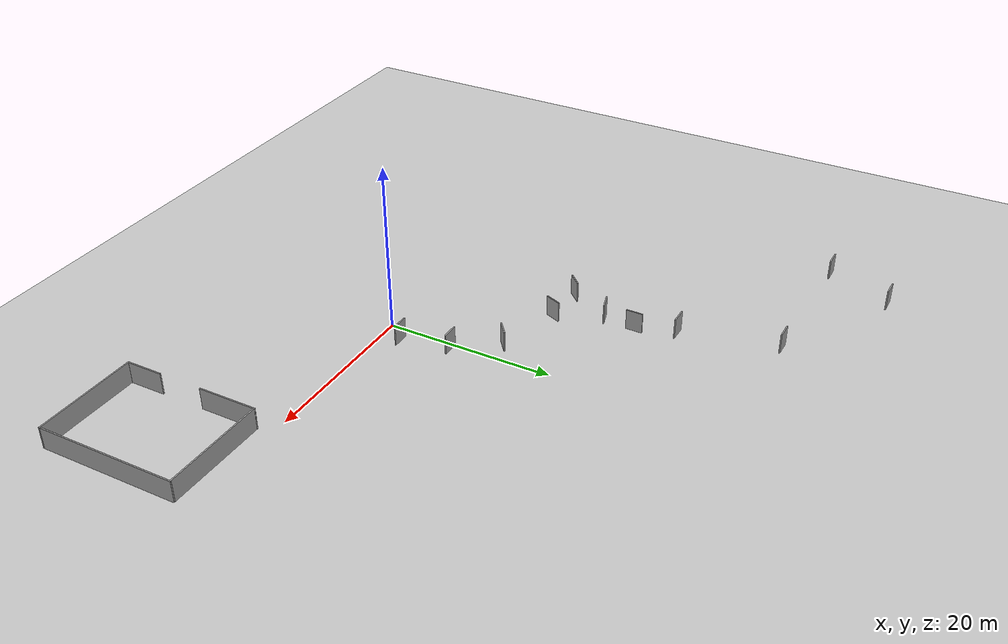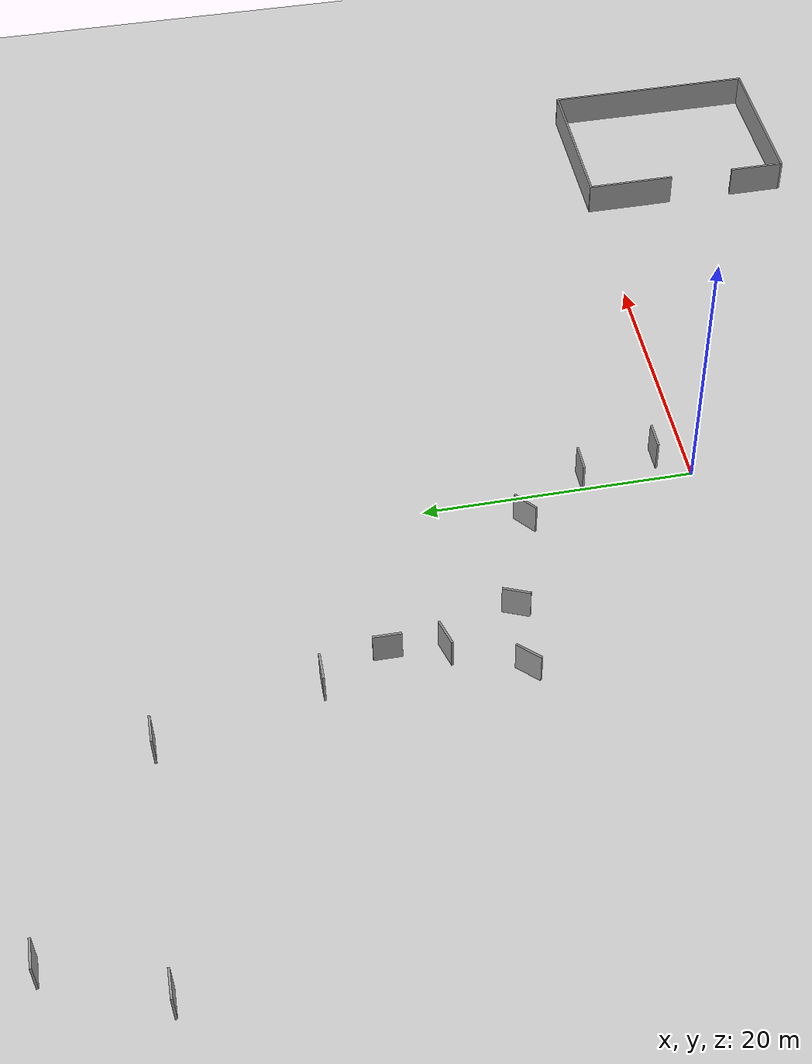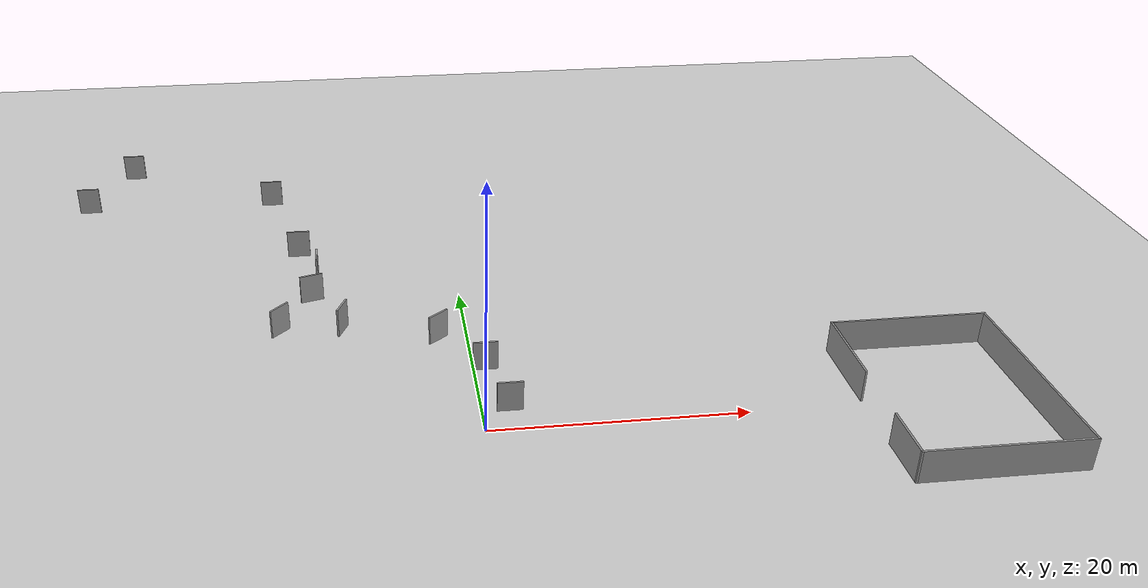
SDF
<sdf version="1.6">
 <world name="default">
  <model name="ground_plane">
   <static>1</static>
   <link name="link">
    <collision name="collision">
     <geometry><plane><normal>0 0 1</normal><size>100 100</size></plane></geometry>
     <surface><friction><ode><mu>100</mu><mu2>50</mu2></ode></friction></surface>
    </collision>
    <visual name="visual">
     <cast_shadows>0</cast_shadows>
     <geometry><plane><normal>0 0 1</normal><size>100 100</size></plane></geometry>
     <material>
      <script><uri>file://media/materials/scripts/gazebo.material</uri><name>Gazebo/Grey</name></script>
     </material>
    </visual>
   </link>
  </model>
  <model name="PaperTestTunnelHouse_1">
   <pose>31.9195 -6.319 4 0 -0 0</pose>
   <link name="Wall_10">
    <collision name="Wall_10_Collision">
     <geometry><box><size>4.25 0.15 2.5</size></box></geometry>
     <pose>0 0 1.25 0 -0 0</pose>
    </collision>
    <visual name="Wall_10_Visual">
     <pose>0 0 1.25 0 -0 0</pose>
     <geometry><box><size>4.25 0.15 2.5</size></box></geometry>
     <material>
      <script><uri>file://media/materials/scripts/gazebo.material</uri><name>Gazebo/Grey</name></script>
      <ambient>1 1 1 1</ambient>
     </material>
     <meta><layer>0</layer></meta>
    </visual>
    <pose>-5.925 -5.875 0 0 -0 1.5708</pose>
   </link>
   <link name="Wall_6">
    <collision name="Wall_6_Collision">
     <geometry><box><size>6.75 0.15 2.5</size></box></geometry>
     <pose>0 0 1.25 0 -0 0</pose>
    </collision>
    <visual name="Wall_6_Visual">
     <pose>0 0 1.25 0 -0 0</pose>
     <geometry><box><size>6.75 0.15 2.5</size></box></geometry>
     <material>
      <script><uri>file://media/materials/scripts/gazebo.material</uri><name>Gazebo/Grey</name></script>
      <ambient>1 1 1 1</ambient>
     </material>
     <meta><layer>0</layer></meta>
    </visual>
    <pose>-5.925 4.625 0 0 -0 1.5708</pose>
   </link>
   <link name="Wall_7">
    <collision name="Wall_7_Collision">
     <geometry><box><size>12 0.15 2.5</size></box></geometry>
     <pose>0 0 1.25 0 -0 0</pose>
    </collision>
    <visual name="Wall_7_Visual">
     <pose>0 0 1.25 0 -0 0</pose>
     <geometry><box><size>12 0.15 2.5</size></box></geometry>
     <material>
      <script><uri>file://media/materials/scripts/gazebo.material</uri><name>Gazebo/Grey</name></script>
      <ambient>1 1 1 1</ambient>
     </material>
     <meta><layer>0</layer></meta>
    </visual>
    <pose>-0 7.925 0 0 -0 0</pose>
   </link>
   <link name="Wall_8">
    <collision name="Wall_8_Collision">
     <geometry><box><size>16 0.15 2.5</size></box></geometry>
     <pose>0 0 1.25 0 -0 0</pose>
    </collision>
    <visual name="Wall_8_Visual">
     <pose>0 0 1.25 0 -0 0</pose>
     <geometry><box><size>16 0.15 2.5</size></box></geometry>
     <material>
      <script><uri>file://media/materials/scripts/gazebo.material</uri><name>Gazebo/Grey</name></script>
      <ambient>1 1 1 1</ambient>
     </material>
     <meta><layer>0</layer></meta>
    </visual>
    <pose>5.925 0 0 0 -0 -1.5708</pose>
   </link>
   <link name="Wall_9">
    <collision name="Wall_9_Collision">
     <geometry><box><size>12 0.15 2.5</size></box></geometry>
     <pose>0 0 1.25 0 -0 0</pose>
    </collision>
    <visual name="Wall_9_Visual">
     <pose>0 0 1.25 0 -0 0</pose>
     <geometry><box><size>12 0.15 2.5</size></box></geometry>
     <material>
      <script><uri>file://media/materials/scripts/gazebo.material</uri><name>Gazebo/Grey</name></script>
      <ambient>1 1 1 1</ambient>
     </material>
     <meta><layer>0</layer></meta>
    </visual>
    <pose>-0 -7.925 0 0 -0 3.14159</pose>
   </link>
   <static>1</static>
  </model>
  <model name="2mWall_3">
   <pose>2.10228 2.41901 0 0 -0 0</pose>
   <link name="Wall_0">
    <collision name="Wall_0_Collision">
     <geometry><box><size>2 0.15 2.5</size></box></geometry>
     <pose>0 0 1.25 0 -0 0</pose>
    </collision>
    <visual name="Wall_0_Visual">
     <pose>0 0 1.25 0 -0 0</pose>
     <geometry><box><size>2 0.15 2.5</size></box></geometry>
     <material>
      <script><uri>file://media/materials/scripts/gazebo.material</uri><name>Gazebo/Grey</name></script>
      <ambient>1 1 1 1</ambient>
     </material>
     <meta><layer>0</layer></meta>
    </visual>
   </link>
   <static>1</static>
  </model>
  <model name="2mWall_4">
   <pose>-10.1702 15.3219 0 0 -0 1.16983</pose>
   <link name="Wall_0">
    <collision name="Wall_0_Collision">
     <geometry><box><size>2 0.15 2.5</size></box></geometry>
     <pose>0 0 1.25 0 -0 0</pose>
    </collision>
    <visual name="Wall_0_Visual">
     <pose>0 0 1.25 0 -0 0</pose>
     <geometry><box><size>2 0.15 2.5</size></box></geometry>
     <material>
      <script><uri>file://media/materials/scripts/gazebo.material</uri><name>Gazebo/Grey</name></script>
      <ambient>1 1 1 1</ambient>
     </material>
     <meta><layer>0</layer></meta>
    </visual>
   </link>
   <static>1</static>
  </model>
  <model name="2mWall_20">
   <pose>-34.4571 40.7091 0 0 -0 0</pose>
   <link name="Wall_0">
    <collision name="Wall_0_Collision">
     <geometry><box><size>2 0.15 2.5</size></box></geometry>
     <pose>0 0 1.25 0 -0 0</pose>
    </collision>
    <visual name="Wall_0_Visual">
     <pose>0 0 1.25 0 -0 0</pose>
     <geometry><box><size>2 0.15 2.5</size></box></geometry>
     <material>
      <script><uri>file://media/materials/scripts/gazebo.material</uri><name>Gazebo/Grey</name></script>
      <ambient>1 1 1 1</ambient>
     </material>
     <meta><layer>0</layer></meta>
    </visual>
   </link>
   <static>1</static>
  </model>
  <model name="2mWall_21">
   <pose>-31.0254 48.4946 0 0 -0 0</pose>
   <link name="Wall_0">
    <collision name="Wall_0_Collision">
     <geometry><box><size>2 0.15 2.5</size></box></geometry>
     <pose>0 0 1.25 0 -0 0</pose>
    </collision>
    <visual name="Wall_0_Visual">
     <pose>0 0 1.25 0 -0 0</pose>
     <geometry><box><size>2 0.15 2.5</size></box></geometry>
     <material>
      <script><uri>file://media/materials/scripts/gazebo.material</uri><name>Gazebo/Grey</name></script>
      <ambient>1 1 1 1</ambient>
     </material>
     <meta><layer>0</layer></meta>
    </visual>
   </link>
   <static>1</static>
  </model>
  <model name="2mWall_3_clone">
   <pose>0.934458 8.21854 0 0 -0 0.005789</pose>
   <link name="Wall_0">
    <collision name="Wall_0_Collision">
     <geometry><box><size>2 0.15 2.5</size></box></geometry>
     <pose>0 0 1.25 0 -0 0</pose>
    </collision>
    <visual name="Wall_0_Visual">
     <pose>0 0 1.25 0 -0 0</pose>
     <geometry><box><size>2 0.15 2.5</size></box></geometry>
     <material>
      <script><uri>file://media/materials/scripts/gazebo.material</uri><name>Gazebo/Grey</name></script>
      <ambient>1 1 1 1</ambient>
     </material>
     <meta><layer>0</layer></meta>
    </visual>
   </link>
   <static>1</static>
  </model>
  <model name="2mWall_22">
   <pose>-16.7034 40.4844 0 0 -0 0</pose>
   <link name="Wall_0">
    <collision name="Wall_0_Collision">
     <geometry><box><size>2 0.15 2.5</size></box></geometry>
     <pose>0 0 1.25 0 -0 0</pose>
    </collision>
    <visual name="Wall_0_Visual">
     <pose>0 0 1.25 0 -0 0</pose>
     <geometry><box><size>2 0.15 2.5</size></box></geometry>
     <material>
      <script><uri>file://media/materials/scripts/gazebo.material</uri><name>Gazebo/Grey</name></script>
      <ambient>1 1 1 1</ambient>
     </material>
     <meta><layer>0</layer></meta>
    </visual>
   </link>
   <static>1</static>
  </model>
  <model name="2mWall_23">
   <pose>-13.8975 29.1539 0 0 -0 0</pose>
   <link name="Wall_0">
    <collision name="Wall_0_Collision">
     <geometry><box><size>2 0.15 2.5</size></box></geometry>
     <pose>0 0 1.25 0 -0 0</pose>
    </collision>
    <visual name="Wall_0_Visual">
     <pose>0 0 1.25 0 -0 0</pose>
     <geometry><box><size>2 0.15 2.5</size></box></geometry>
     <material>
      <script><uri>file://media/materials/scripts/gazebo.material</uri><name>Gazebo/Grey</name></script>
      <ambient>1 1 1 1</ambient>
     </material>
     <meta><layer>0</layer></meta>
    </visual>
   </link>
   <static>1</static>
  </model>
  <model name="2mWall_3_clone_clone">
   <pose>-2.39772 13.0333 0 0 -0 0.683141</pose>
   <link name="Wall_0">
    <collision name="Wall_0_Collision">
     <geometry><box><size>2 0.15 2.5</size></box></geometry>
     <pose>0 0 1.25 0 -0 0</pose>
    </collision>
    <visual name="Wall_0_Visual">
     <pose>0 0 1.25 0 -0 0</pose>
     <geometry><box><size>2 0.15 2.5</size></box></geometry>
     <material>
      <script><uri>file://media/materials/scripts/gazebo.material</uri><name>Gazebo/Grey</name></script>
      <ambient>1 1 1 1</ambient>
     </material>
     <meta><layer>0</layer></meta>
    </visual>
   </link>
   <static>1</static>
  </model>
  <model name="2mWall_4_clone">
   <pose>-12.6953 20.6897 0 0 -0 0.281702</pose>
   <link name="Wall_0">
    <collision name="Wall_0_Collision">
     <geometry><box><size>2 0.15 2.5</size></box></geometry>
     <pose>0 0 1.25 0 -0 0</pose>
    </collision>
    <visual name="Wall_0_Visual">
     <pose>0 0 1.25 0 -0 0</pose>
     <geometry><box><size>2 0.15 2.5</size></box></geometry>
     <material>
      <script><uri>file://media/materials/scripts/gazebo.material</uri><name>Gazebo/Grey</name></script>
      <ambient>1 1 1 1</ambient>
     </material>
     <meta><layer>0</layer></meta>
    </visual>
   </link>
   <static>1</static>
  </model>
  <model name="2mWall_4_clone_0">
   <pose>-15.2911 15.5794 0 0 -0 0.804554</pose>
   <link name="Wall_0">
    <collision name="Wall_0_Collision">
     <geometry><box><size>2 0.15 2.5</size></box></geometry>
     <pose>0 0 1.25 0 -0 0</pose>
    </collision>
    <visual name="Wall_0_Visual">
     <pose>0 0 1.25 0 -0 0</pose>
     <geometry><box><size>2 0.15 2.5</size></box></geometry>
     <material>
      <script><uri>file://media/materials/scripts/gazebo.material</uri><name>Gazebo/Grey</name></script>
      <ambient>1 1 1 1</ambient>
     </material>
     <meta><layer>0</layer></meta>
    </visual>
   </link>
   <static>1</static>
  </model>
  <model name="2mWall_32_clone_0_clone">
   <pose>-12.2241 24.5362 0 0 0 -1.58469</pose>
   <link name="Wall_0">
    <collision name="Wall_0_Collision">
     <geometry><box><size>2 0.15 2.5</size></box></geometry>
     <pose>0 0 1.25 0 -0 0</pose>
    </collision>
    <visual name="Wall_0_Visual">
     <pose>0 0 1.25 0 -0 0</pose>
     <geometry><box><size>2 0.15 2.5</size></box></geometry>
     <material>
      <script><uri>file://media/materials/scripts/gazebo.material</uri><name>Gazebo/Grey</name></script>
      <ambient>1 1 1 1</ambient>
     </material>
     <meta><layer>0</layer></meta>
    </visual>
   </link>
   <static>1</static>
  </model>
 </world>
</sdf>
